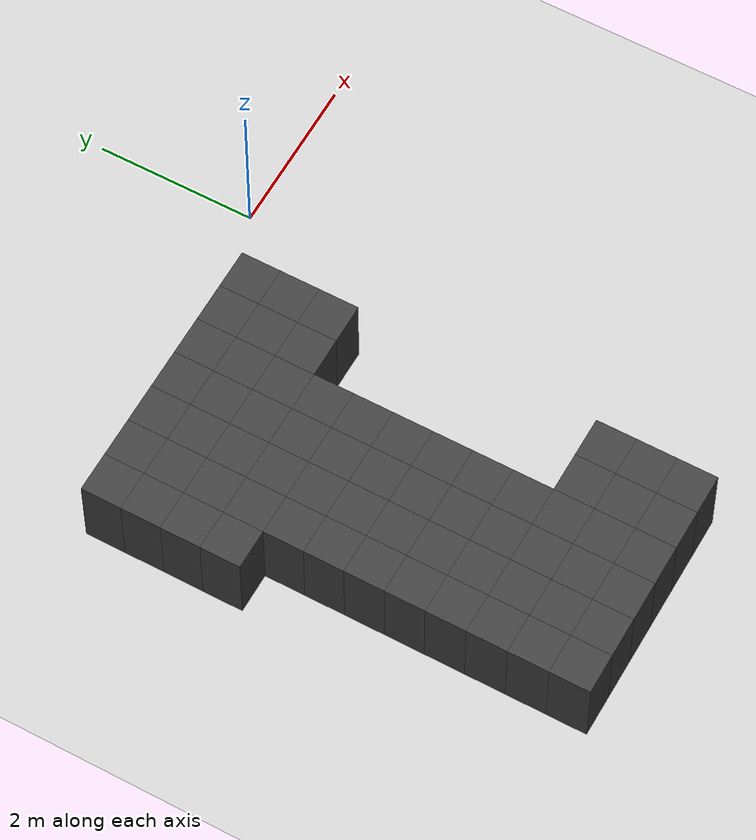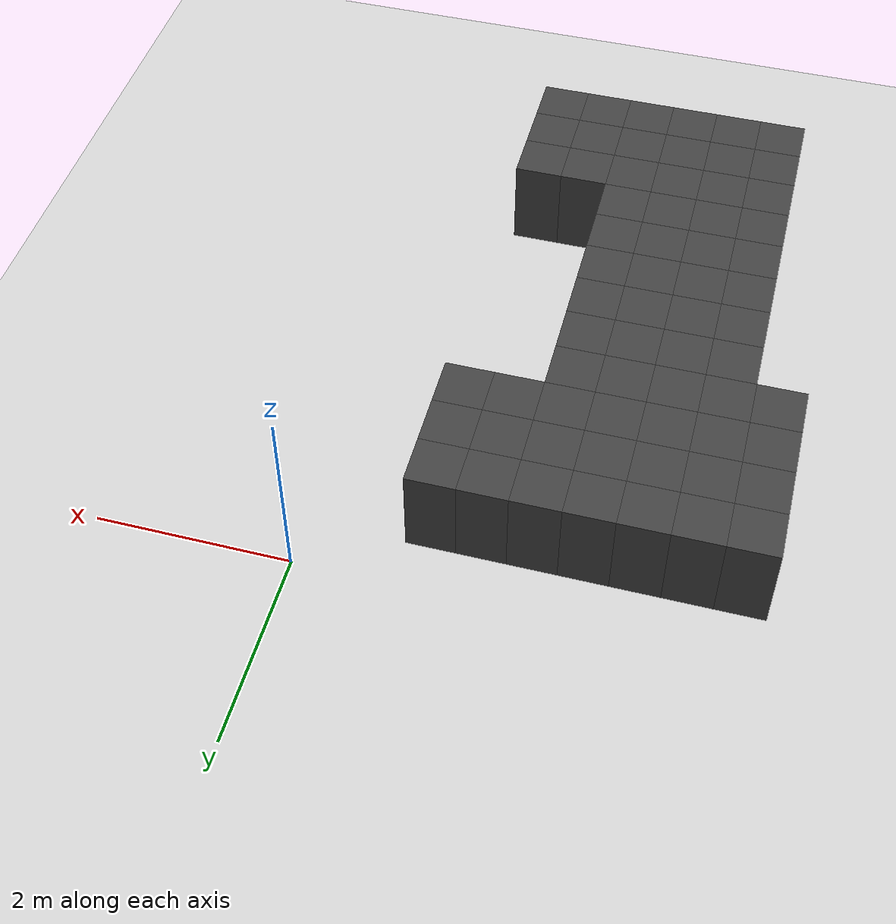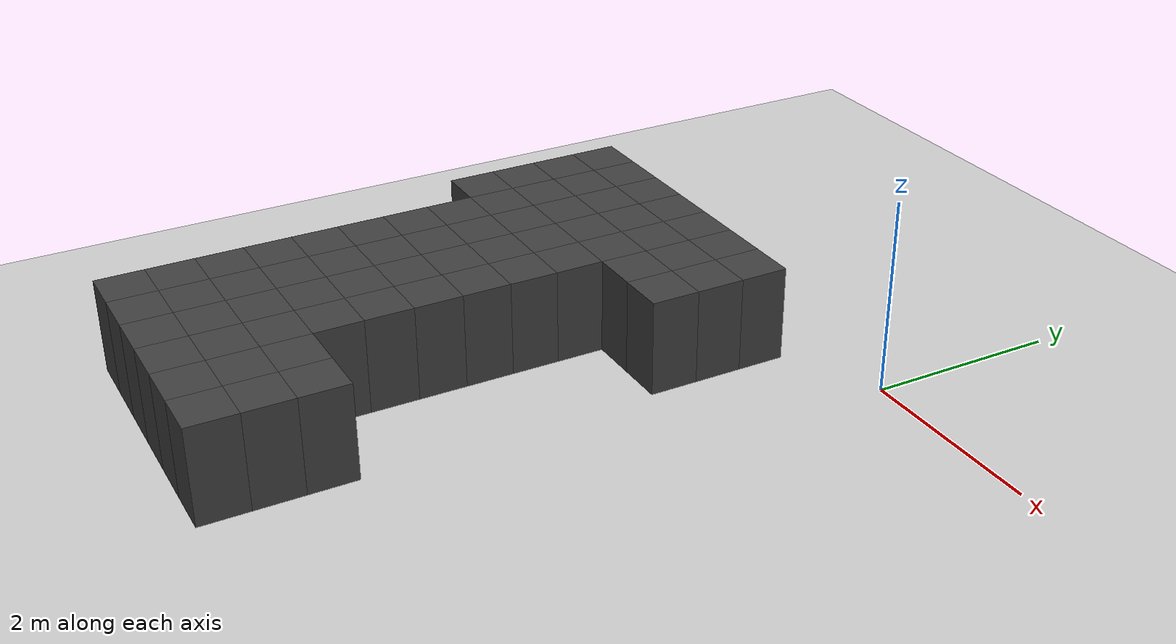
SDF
<sdf version="1.7">
 <world name="map_11515">
  <model name="ground_plane">
   <static>true</static>
   <link name="link">
    <collision name="collision">
     <geometry><plane><normal>0 0 1</normal><size>200 200</size></plane></geometry>
    </collision>
    <visual name="visual">
     <geometry><plane><normal>0 0 1</normal><size>200 200</size></plane></geometry>
     <material><ambient>0.8 0.8 0.8 1</ambient><diffuse>0.8 0.8 0.8 1</diffuse></material>
    </visual>
   </link>
  </model>
  <model name="maze_environment">
   <static>true</static>
   <link name="wall_1096">
    <pose>-4.250 -0.750 0.500 0 0 0</pose>
    <collision name="col"><geometry><box><size>0.5 0.5 1.0</size></box></geometry></collision>
    <visual name="vis">
     <geometry><box><size>0.5 0.5 1.0</size></box></geometry>
     <material><ambient>0.15 0.15 0.15 1</ambient><diffuse>0.25 0.25 0.25 1</diffuse></material>
    </visual>
   </link>
   <link name="wall_1097">
    <pose>-3.750 -0.750 0.500 0 0 0</pose>
    <collision name="col"><geometry><box><size>0.5 0.5 1.0</size></box></geometry></collision>
    <visual name="vis">
     <geometry><box><size>0.5 0.5 1.0</size></box></geometry>
     <material><ambient>0.15 0.15 0.15 1</ambient><diffuse>0.25 0.25 0.25 1</diffuse></material>
    </visual>
   </link>
   <link name="wall_1098">
    <pose>-3.250 -0.750 0.500 0 0 0</pose>
    <collision name="col"><geometry><box><size>0.5 0.5 1.0</size></box></geometry></collision>
    <visual name="vis">
     <geometry><box><size>0.5 0.5 1.0</size></box></geometry>
     <material><ambient>0.15 0.15 0.15 1</ambient><diffuse>0.25 0.25 0.25 1</diffuse></material>
    </visual>
   </link>
   <link name="wall_1099">
    <pose>-2.750 -0.750 0.500 0 0 0</pose>
    <collision name="col"><geometry><box><size>0.5 0.5 1.0</size></box></geometry></collision>
    <visual name="vis">
     <geometry><box><size>0.5 0.5 1.0</size></box></geometry>
     <material><ambient>0.15 0.15 0.15 1</ambient><diffuse>0.25 0.25 0.25 1</diffuse></material>
    </visual>
   </link>
   <link name="wall_1100">
    <pose>-2.250 -0.750 0.500 0 0 0</pose>
    <collision name="col"><geometry><box><size>0.5 0.5 1.0</size></box></geometry></collision>
    <visual name="vis">
     <geometry><box><size>0.5 0.5 1.0</size></box></geometry>
     <material><ambient>0.15 0.15 0.15 1</ambient><diffuse>0.25 0.25 0.25 1</diffuse></material>
    </visual>
   </link>
   <link name="wall_1101">
    <pose>-1.750 -0.750 0.500 0 0 0</pose>
    <collision name="col"><geometry><box><size>0.5 0.5 1.0</size></box></geometry></collision>
    <visual name="vis">
     <geometry><box><size>0.5 0.5 1.0</size></box></geometry>
     <material><ambient>0.15 0.15 0.15 1</ambient><diffuse>0.25 0.25 0.25 1</diffuse></material>
    </visual>
   </link>
   <link name="wall_1102">
    <pose>-1.250 -0.750 0.500 0 0 0</pose>
    <collision name="col"><geometry><box><size>0.5 0.5 1.0</size></box></geometry></collision>
    <visual name="vis">
     <geometry><box><size>0.5 0.5 1.0</size></box></geometry>
     <material><ambient>0.15 0.15 0.15 1</ambient><diffuse>0.25 0.25 0.25 1</diffuse></material>
    </visual>
   </link>
   <link name="wall_1145">
    <pose>-4.250 -1.250 0.500 0 0 0</pose>
    <collision name="col"><geometry><box><size>0.5 0.5 1.0</size></box></geometry></collision>
    <visual name="vis">
     <geometry><box><size>0.5 0.5 1.0</size></box></geometry>
     <material><ambient>0.15 0.15 0.15 1</ambient><diffuse>0.25 0.25 0.25 1</diffuse></material>
    </visual>
   </link>
   <link name="wall_1146">
    <pose>-3.750 -1.250 0.500 0 0 0</pose>
    <collision name="col"><geometry><box><size>0.5 0.5 1.0</size></box></geometry></collision>
    <visual name="vis">
     <geometry><box><size>0.5 0.5 1.0</size></box></geometry>
     <material><ambient>0.15 0.15 0.15 1</ambient><diffuse>0.25 0.25 0.25 1</diffuse></material>
    </visual>
   </link>
   <link name="wall_1147">
    <pose>-3.250 -1.250 0.500 0 0 0</pose>
    <collision name="col"><geometry><box><size>0.5 0.5 1.0</size></box></geometry></collision>
    <visual name="vis">
     <geometry><box><size>0.5 0.5 1.0</size></box></geometry>
     <material><ambient>0.15 0.15 0.15 1</ambient><diffuse>0.25 0.25 0.25 1</diffuse></material>
    </visual>
   </link>
   <link name="wall_1148">
    <pose>-2.750 -1.250 0.500 0 0 0</pose>
    <collision name="col"><geometry><box><size>0.5 0.5 1.0</size></box></geometry></collision>
    <visual name="vis">
     <geometry><box><size>0.5 0.5 1.0</size></box></geometry>
     <material><ambient>0.15 0.15 0.15 1</ambient><diffuse>0.25 0.25 0.25 1</diffuse></material>
    </visual>
   </link>
   <link name="wall_1149">
    <pose>-2.250 -1.250 0.500 0 0 0</pose>
    <collision name="col"><geometry><box><size>0.5 0.5 1.0</size></box></geometry></collision>
    <visual name="vis">
     <geometry><box><size>0.5 0.5 1.0</size></box></geometry>
     <material><ambient>0.15 0.15 0.15 1</ambient><diffuse>0.25 0.25 0.25 1</diffuse></material>
    </visual>
   </link>
   <link name="wall_1150">
    <pose>-1.750 -1.250 0.500 0 0 0</pose>
    <collision name="col"><geometry><box><size>0.5 0.5 1.0</size></box></geometry></collision>
    <visual name="vis">
     <geometry><box><size>0.5 0.5 1.0</size></box></geometry>
     <material><ambient>0.15 0.15 0.15 1</ambient><diffuse>0.25 0.25 0.25 1</diffuse></material>
    </visual>
   </link>
   <link name="wall_1151">
    <pose>-1.250 -1.250 0.500 0 0 0</pose>
    <collision name="col"><geometry><box><size>0.5 0.5 1.0</size></box></geometry></collision>
    <visual name="vis">
     <geometry><box><size>0.5 0.5 1.0</size></box></geometry>
     <material><ambient>0.15 0.15 0.15 1</ambient><diffuse>0.25 0.25 0.25 1</diffuse></material>
    </visual>
   </link>
   <link name="wall_1194">
    <pose>-4.250 -1.750 0.500 0 0 0</pose>
    <collision name="col"><geometry><box><size>0.5 0.5 1.0</size></box></geometry></collision>
    <visual name="vis">
     <geometry><box><size>0.5 0.5 1.0</size></box></geometry>
     <material><ambient>0.15 0.15 0.15 1</ambient><diffuse>0.25 0.25 0.25 1</diffuse></material>
    </visual>
   </link>
   <link name="wall_1195">
    <pose>-3.750 -1.750 0.500 0 0 0</pose>
    <collision name="col"><geometry><box><size>0.5 0.5 1.0</size></box></geometry></collision>
    <visual name="vis">
     <geometry><box><size>0.5 0.5 1.0</size></box></geometry>
     <material><ambient>0.15 0.15 0.15 1</ambient><diffuse>0.25 0.25 0.25 1</diffuse></material>
    </visual>
   </link>
   <link name="wall_1196">
    <pose>-3.250 -1.750 0.500 0 0 0</pose>
    <collision name="col"><geometry><box><size>0.5 0.5 1.0</size></box></geometry></collision>
    <visual name="vis">
     <geometry><box><size>0.5 0.5 1.0</size></box></geometry>
     <material><ambient>0.15 0.15 0.15 1</ambient><diffuse>0.25 0.25 0.25 1</diffuse></material>
    </visual>
   </link>
   <link name="wall_1197">
    <pose>-2.750 -1.750 0.500 0 0 0</pose>
    <collision name="col"><geometry><box><size>0.5 0.5 1.0</size></box></geometry></collision>
    <visual name="vis">
     <geometry><box><size>0.5 0.5 1.0</size></box></geometry>
     <material><ambient>0.15 0.15 0.15 1</ambient><diffuse>0.25 0.25 0.25 1</diffuse></material>
    </visual>
   </link>
   <link name="wall_1198">
    <pose>-2.250 -1.750 0.500 0 0 0</pose>
    <collision name="col"><geometry><box><size>0.5 0.5 1.0</size></box></geometry></collision>
    <visual name="vis">
     <geometry><box><size>0.5 0.5 1.0</size></box></geometry>
     <material><ambient>0.15 0.15 0.15 1</ambient><diffuse>0.25 0.25 0.25 1</diffuse></material>
    </visual>
   </link>
   <link name="wall_1199">
    <pose>-1.750 -1.750 0.500 0 0 0</pose>
    <collision name="col"><geometry><box><size>0.5 0.5 1.0</size></box></geometry></collision>
    <visual name="vis">
     <geometry><box><size>0.5 0.5 1.0</size></box></geometry>
     <material><ambient>0.15 0.15 0.15 1</ambient><diffuse>0.25 0.25 0.25 1</diffuse></material>
    </visual>
   </link>
   <link name="wall_1200">
    <pose>-1.250 -1.750 0.500 0 0 0</pose>
    <collision name="col"><geometry><box><size>0.5 0.5 1.0</size></box></geometry></collision>
    <visual name="vis">
     <geometry><box><size>0.5 0.5 1.0</size></box></geometry>
     <material><ambient>0.15 0.15 0.15 1</ambient><diffuse>0.25 0.25 0.25 1</diffuse></material>
    </visual>
   </link>
   <link name="wall_1243">
    <pose>-4.250 -2.250 0.500 0 0 0</pose>
    <collision name="col"><geometry><box><size>0.5 0.5 1.0</size></box></geometry></collision>
    <visual name="vis">
     <geometry><box><size>0.5 0.5 1.0</size></box></geometry>
     <material><ambient>0.15 0.15 0.15 1</ambient><diffuse>0.25 0.25 0.25 1</diffuse></material>
    </visual>
   </link>
   <link name="wall_1244">
    <pose>-3.750 -2.250 0.500 0 0 0</pose>
    <collision name="col"><geometry><box><size>0.5 0.5 1.0</size></box></geometry></collision>
    <visual name="vis">
     <geometry><box><size>0.5 0.5 1.0</size></box></geometry>
     <material><ambient>0.15 0.15 0.15 1</ambient><diffuse>0.25 0.25 0.25 1</diffuse></material>
    </visual>
   </link>
   <link name="wall_1245">
    <pose>-3.250 -2.250 0.500 0 0 0</pose>
    <collision name="col"><geometry><box><size>0.5 0.5 1.0</size></box></geometry></collision>
    <visual name="vis">
     <geometry><box><size>0.5 0.5 1.0</size></box></geometry>
     <material><ambient>0.15 0.15 0.15 1</ambient><diffuse>0.25 0.25 0.25 1</diffuse></material>
    </visual>
   </link>
   <link name="wall_1246">
    <pose>-2.750 -2.250 0.500 0 0 0</pose>
    <collision name="col"><geometry><box><size>0.5 0.5 1.0</size></box></geometry></collision>
    <visual name="vis">
     <geometry><box><size>0.5 0.5 1.0</size></box></geometry>
     <material><ambient>0.15 0.15 0.15 1</ambient><diffuse>0.25 0.25 0.25 1</diffuse></material>
    </visual>
   </link>
   <link name="wall_1247">
    <pose>-2.250 -2.250 0.500 0 0 0</pose>
    <collision name="col"><geometry><box><size>0.5 0.5 1.0</size></box></geometry></collision>
    <visual name="vis">
     <geometry><box><size>0.5 0.5 1.0</size></box></geometry>
     <material><ambient>0.15 0.15 0.15 1</ambient><diffuse>0.25 0.25 0.25 1</diffuse></material>
    </visual>
   </link>
   <link name="wall_1290">
    <pose>-3.750 -2.750 0.500 0 0 0</pose>
    <collision name="col"><geometry><box><size>0.5 0.5 1.0</size></box></geometry></collision>
    <visual name="vis">
     <geometry><box><size>0.5 0.5 1.0</size></box></geometry>
     <material><ambient>0.15 0.15 0.15 1</ambient><diffuse>0.25 0.25 0.25 1</diffuse></material>
    </visual>
   </link>
   <link name="wall_1291">
    <pose>-3.250 -2.750 0.500 0 0 0</pose>
    <collision name="col"><geometry><box><size>0.5 0.5 1.0</size></box></geometry></collision>
    <visual name="vis">
     <geometry><box><size>0.5 0.5 1.0</size></box></geometry>
     <material><ambient>0.15 0.15 0.15 1</ambient><diffuse>0.25 0.25 0.25 1</diffuse></material>
    </visual>
   </link>
   <link name="wall_1292">
    <pose>-2.750 -2.750 0.500 0 0 0</pose>
    <collision name="col"><geometry><box><size>0.5 0.5 1.0</size></box></geometry></collision>
    <visual name="vis">
     <geometry><box><size>0.5 0.5 1.0</size></box></geometry>
     <material><ambient>0.15 0.15 0.15 1</ambient><diffuse>0.25 0.25 0.25 1</diffuse></material>
    </visual>
   </link>
   <link name="wall_1293">
    <pose>-2.250 -2.750 0.500 0 0 0</pose>
    <collision name="col"><geometry><box><size>0.5 0.5 1.0</size></box></geometry></collision>
    <visual name="vis">
     <geometry><box><size>0.5 0.5 1.0</size></box></geometry>
     <material><ambient>0.15 0.15 0.15 1</ambient><diffuse>0.25 0.25 0.25 1</diffuse></material>
    </visual>
   </link>
   <link name="wall_1336">
    <pose>-3.750 -3.250 0.500 0 0 0</pose>
    <collision name="col"><geometry><box><size>0.5 0.5 1.0</size></box></geometry></collision>
    <visual name="vis">
     <geometry><box><size>0.5 0.5 1.0</size></box></geometry>
     <material><ambient>0.15 0.15 0.15 1</ambient><diffuse>0.25 0.25 0.25 1</diffuse></material>
    </visual>
   </link>
   <link name="wall_1337">
    <pose>-3.250 -3.250 0.500 0 0 0</pose>
    <collision name="col"><geometry><box><size>0.5 0.5 1.0</size></box></geometry></collision>
    <visual name="vis">
     <geometry><box><size>0.5 0.5 1.0</size></box></geometry>
     <material><ambient>0.15 0.15 0.15 1</ambient><diffuse>0.25 0.25 0.25 1</diffuse></material>
    </visual>
   </link>
   <link name="wall_1338">
    <pose>-2.750 -3.250 0.500 0 0 0</pose>
    <collision name="col"><geometry><box><size>0.5 0.5 1.0</size></box></geometry></collision>
    <visual name="vis">
     <geometry><box><size>0.5 0.5 1.0</size></box></geometry>
     <material><ambient>0.15 0.15 0.15 1</ambient><diffuse>0.25 0.25 0.25 1</diffuse></material>
    </visual>
   </link>
   <link name="wall_1339">
    <pose>-2.250 -3.250 0.500 0 0 0</pose>
    <collision name="col"><geometry><box><size>0.5 0.5 1.0</size></box></geometry></collision>
    <visual name="vis">
     <geometry><box><size>0.5 0.5 1.0</size></box></geometry>
     <material><ambient>0.15 0.15 0.15 1</ambient><diffuse>0.25 0.25 0.25 1</diffuse></material>
    </visual>
   </link>
   <link name="wall_1382">
    <pose>-3.750 -3.750 0.500 0 0 0</pose>
    <collision name="col"><geometry><box><size>0.5 0.5 1.0</size></box></geometry></collision>
    <visual name="vis">
     <geometry><box><size>0.5 0.5 1.0</size></box></geometry>
     <material><ambient>0.15 0.15 0.15 1</ambient><diffuse>0.25 0.25 0.25 1</diffuse></material>
    </visual>
   </link>
   <link name="wall_1383">
    <pose>-3.250 -3.750 0.500 0 0 0</pose>
    <collision name="col"><geometry><box><size>0.5 0.5 1.0</size></box></geometry></collision>
    <visual name="vis">
     <geometry><box><size>0.5 0.5 1.0</size></box></geometry>
     <material><ambient>0.15 0.15 0.15 1</ambient><diffuse>0.25 0.25 0.25 1</diffuse></material>
    </visual>
   </link>
   <link name="wall_1384">
    <pose>-2.750 -3.750 0.500 0 0 0</pose>
    <collision name="col"><geometry><box><size>0.5 0.5 1.0</size></box></geometry></collision>
    <visual name="vis">
     <geometry><box><size>0.5 0.5 1.0</size></box></geometry>
     <material><ambient>0.15 0.15 0.15 1</ambient><diffuse>0.25 0.25 0.25 1</diffuse></material>
    </visual>
   </link>
   <link name="wall_1385">
    <pose>-2.250 -3.750 0.500 0 0 0</pose>
    <collision name="col"><geometry><box><size>0.5 0.5 1.0</size></box></geometry></collision>
    <visual name="vis">
     <geometry><box><size>0.5 0.5 1.0</size></box></geometry>
     <material><ambient>0.15 0.15 0.15 1</ambient><diffuse>0.25 0.25 0.25 1</diffuse></material>
    </visual>
   </link>
   <link name="wall_1428">
    <pose>-3.750 -4.250 0.500 0 0 0</pose>
    <collision name="col"><geometry><box><size>0.5 0.5 1.0</size></box></geometry></collision>
    <visual name="vis">
     <geometry><box><size>0.5 0.5 1.0</size></box></geometry>
     <material><ambient>0.15 0.15 0.15 1</ambient><diffuse>0.25 0.25 0.25 1</diffuse></material>
    </visual>
   </link>
   <link name="wall_1429">
    <pose>-3.250 -4.250 0.500 0 0 0</pose>
    <collision name="col"><geometry><box><size>0.5 0.5 1.0</size></box></geometry></collision>
    <visual name="vis">
     <geometry><box><size>0.5 0.5 1.0</size></box></geometry>
     <material><ambient>0.15 0.15 0.15 1</ambient><diffuse>0.25 0.25 0.25 1</diffuse></material>
    </visual>
   </link>
   <link name="wall_1430">
    <pose>-2.750 -4.250 0.500 0 0 0</pose>
    <collision name="col"><geometry><box><size>0.5 0.5 1.0</size></box></geometry></collision>
    <visual name="vis">
     <geometry><box><size>0.5 0.5 1.0</size></box></geometry>
     <material><ambient>0.15 0.15 0.15 1</ambient><diffuse>0.25 0.25 0.25 1</diffuse></material>
    </visual>
   </link>
   <link name="wall_1431">
    <pose>-2.250 -4.250 0.500 0 0 0</pose>
    <collision name="col"><geometry><box><size>0.5 0.5 1.0</size></box></geometry></collision>
    <visual name="vis">
     <geometry><box><size>0.5 0.5 1.0</size></box></geometry>
     <material><ambient>0.15 0.15 0.15 1</ambient><diffuse>0.25 0.25 0.25 1</diffuse></material>
    </visual>
   </link>
   <link name="wall_1474">
    <pose>-3.750 -4.750 0.500 0 0 0</pose>
    <collision name="col"><geometry><box><size>0.5 0.5 1.0</size></box></geometry></collision>
    <visual name="vis">
     <geometry><box><size>0.5 0.5 1.0</size></box></geometry>
     <material><ambient>0.15 0.15 0.15 1</ambient><diffuse>0.25 0.25 0.25 1</diffuse></material>
    </visual>
   </link>
   <link name="wall_1475">
    <pose>-3.250 -4.750 0.500 0 0 0</pose>
    <collision name="col"><geometry><box><size>0.5 0.5 1.0</size></box></geometry></collision>
    <visual name="vis">
     <geometry><box><size>0.5 0.5 1.0</size></box></geometry>
     <material><ambient>0.15 0.15 0.15 1</ambient><diffuse>0.25 0.25 0.25 1</diffuse></material>
    </visual>
   </link>
   <link name="wall_1476">
    <pose>-2.750 -4.750 0.500 0 0 0</pose>
    <collision name="col"><geometry><box><size>0.5 0.5 1.0</size></box></geometry></collision>
    <visual name="vis">
     <geometry><box><size>0.5 0.5 1.0</size></box></geometry>
     <material><ambient>0.15 0.15 0.15 1</ambient><diffuse>0.25 0.25 0.25 1</diffuse></material>
    </visual>
   </link>
   <link name="wall_1477">
    <pose>-2.250 -4.750 0.500 0 0 0</pose>
    <collision name="col"><geometry><box><size>0.5 0.5 1.0</size></box></geometry></collision>
    <visual name="vis">
     <geometry><box><size>0.5 0.5 1.0</size></box></geometry>
     <material><ambient>0.15 0.15 0.15 1</ambient><diffuse>0.25 0.25 0.25 1</diffuse></material>
    </visual>
   </link>
   <link name="wall_1520">
    <pose>-3.750 -5.250 0.500 0 0 0</pose>
    <collision name="col"><geometry><box><size>0.5 0.5 1.0</size></box></geometry></collision>
    <visual name="vis">
     <geometry><box><size>0.5 0.5 1.0</size></box></geometry>
     <material><ambient>0.15 0.15 0.15 1</ambient><diffuse>0.25 0.25 0.25 1</diffuse></material>
    </visual>
   </link>
   <link name="wall_1521">
    <pose>-3.250 -5.250 0.500 0 0 0</pose>
    <collision name="col"><geometry><box><size>0.5 0.5 1.0</size></box></geometry></collision>
    <visual name="vis">
     <geometry><box><size>0.5 0.5 1.0</size></box></geometry>
     <material><ambient>0.15 0.15 0.15 1</ambient><diffuse>0.25 0.25 0.25 1</diffuse></material>
    </visual>
   </link>
   <link name="wall_1522">
    <pose>-2.750 -5.250 0.500 0 0 0</pose>
    <collision name="col"><geometry><box><size>0.5 0.5 1.0</size></box></geometry></collision>
    <visual name="vis">
     <geometry><box><size>0.5 0.5 1.0</size></box></geometry>
     <material><ambient>0.15 0.15 0.15 1</ambient><diffuse>0.25 0.25 0.25 1</diffuse></material>
    </visual>
   </link>
   <link name="wall_1523">
    <pose>-2.250 -5.250 0.500 0 0 0</pose>
    <collision name="col"><geometry><box><size>0.5 0.5 1.0</size></box></geometry></collision>
    <visual name="vis">
     <geometry><box><size>0.5 0.5 1.0</size></box></geometry>
     <material><ambient>0.15 0.15 0.15 1</ambient><diffuse>0.25 0.25 0.25 1</diffuse></material>
    </visual>
   </link>
   <link name="wall_1524">
    <pose>-1.750 -5.250 0.500 0 0 0</pose>
    <collision name="col"><geometry><box><size>0.5 0.5 1.0</size></box></geometry></collision>
    <visual name="vis">
     <geometry><box><size>0.5 0.5 1.0</size></box></geometry>
     <material><ambient>0.15 0.15 0.15 1</ambient><diffuse>0.25 0.25 0.25 1</diffuse></material>
    </visual>
   </link>
   <link name="wall_1525">
    <pose>-1.250 -5.250 0.500 0 0 0</pose>
    <collision name="col"><geometry><box><size>0.5 0.5 1.0</size></box></geometry></collision>
    <visual name="vis">
     <geometry><box><size>0.5 0.5 1.0</size></box></geometry>
     <material><ambient>0.15 0.15 0.15 1</ambient><diffuse>0.25 0.25 0.25 1</diffuse></material>
    </visual>
   </link>
   <link name="wall_1569">
    <pose>-3.750 -5.750 0.500 0 0 0</pose>
    <collision name="col"><geometry><box><size>0.5 0.5 1.0</size></box></geometry></collision>
    <visual name="vis">
     <geometry><box><size>0.5 0.5 1.0</size></box></geometry>
     <material><ambient>0.15 0.15 0.15 1</ambient><diffuse>0.25 0.25 0.25 1</diffuse></material>
    </visual>
   </link>
   <link name="wall_1570">
    <pose>-3.250 -5.750 0.500 0 0 0</pose>
    <collision name="col"><geometry><box><size>0.5 0.5 1.0</size></box></geometry></collision>
    <visual name="vis">
     <geometry><box><size>0.5 0.5 1.0</size></box></geometry>
     <material><ambient>0.15 0.15 0.15 1</ambient><diffuse>0.25 0.25 0.25 1</diffuse></material>
    </visual>
   </link>
   <link name="wall_1571">
    <pose>-2.750 -5.750 0.500 0 0 0</pose>
    <collision name="col"><geometry><box><size>0.5 0.5 1.0</size></box></geometry></collision>
    <visual name="vis">
     <geometry><box><size>0.5 0.5 1.0</size></box></geometry>
     <material><ambient>0.15 0.15 0.15 1</ambient><diffuse>0.25 0.25 0.25 1</diffuse></material>
    </visual>
   </link>
   <link name="wall_1572">
    <pose>-2.250 -5.750 0.500 0 0 0</pose>
    <collision name="col"><geometry><box><size>0.5 0.5 1.0</size></box></geometry></collision>
    <visual name="vis">
     <geometry><box><size>0.5 0.5 1.0</size></box></geometry>
     <material><ambient>0.15 0.15 0.15 1</ambient><diffuse>0.25 0.25 0.25 1</diffuse></material>
    </visual>
   </link>
   <link name="wall_1573">
    <pose>-1.750 -5.750 0.500 0 0 0</pose>
    <collision name="col"><geometry><box><size>0.5 0.5 1.0</size></box></geometry></collision>
    <visual name="vis">
     <geometry><box><size>0.5 0.5 1.0</size></box></geometry>
     <material><ambient>0.15 0.15 0.15 1</ambient><diffuse>0.25 0.25 0.25 1</diffuse></material>
    </visual>
   </link>
   <link name="wall_1574">
    <pose>-1.250 -5.750 0.500 0 0 0</pose>
    <collision name="col"><geometry><box><size>0.5 0.5 1.0</size></box></geometry></collision>
    <visual name="vis">
     <geometry><box><size>0.5 0.5 1.0</size></box></geometry>
     <material><ambient>0.15 0.15 0.15 1</ambient><diffuse>0.25 0.25 0.25 1</diffuse></material>
    </visual>
   </link>
   <link name="wall_1618">
    <pose>-3.750 -6.250 0.500 0 0 0</pose>
    <collision name="col"><geometry><box><size>0.5 0.5 1.0</size></box></geometry></collision>
    <visual name="vis">
     <geometry><box><size>0.5 0.5 1.0</size></box></geometry>
     <material><ambient>0.15 0.15 0.15 1</ambient><diffuse>0.25 0.25 0.25 1</diffuse></material>
    </visual>
   </link>
   <link name="wall_1619">
    <pose>-3.250 -6.250 0.500 0 0 0</pose>
    <collision name="col"><geometry><box><size>0.5 0.5 1.0</size></box></geometry></collision>
    <visual name="vis">
     <geometry><box><size>0.5 0.5 1.0</size></box></geometry>
     <material><ambient>0.15 0.15 0.15 1</ambient><diffuse>0.25 0.25 0.25 1</diffuse></material>
    </visual>
   </link>
   <link name="wall_1620">
    <pose>-2.750 -6.250 0.500 0 0 0</pose>
    <collision name="col"><geometry><box><size>0.5 0.5 1.0</size></box></geometry></collision>
    <visual name="vis">
     <geometry><box><size>0.5 0.5 1.0</size></box></geometry>
     <material><ambient>0.15 0.15 0.15 1</ambient><diffuse>0.25 0.25 0.25 1</diffuse></material>
    </visual>
   </link>
   <link name="wall_1621">
    <pose>-2.250 -6.250 0.500 0 0 0</pose>
    <collision name="col"><geometry><box><size>0.5 0.5 1.0</size></box></geometry></collision>
    <visual name="vis">
     <geometry><box><size>0.5 0.5 1.0</size></box></geometry>
     <material><ambient>0.15 0.15 0.15 1</ambient><diffuse>0.25 0.25 0.25 1</diffuse></material>
    </visual>
   </link>
   <link name="wall_1622">
    <pose>-1.750 -6.250 0.500 0 0 0</pose>
    <collision name="col"><geometry><box><size>0.5 0.5 1.0</size></box></geometry></collision>
    <visual name="vis">
     <geometry><box><size>0.5 0.5 1.0</size></box></geometry>
     <material><ambient>0.15 0.15 0.15 1</ambient><diffuse>0.25 0.25 0.25 1</diffuse></material>
    </visual>
   </link>
   <link name="wall_1623">
    <pose>-1.250 -6.250 0.500 0 0 0</pose>
    <collision name="col"><geometry><box><size>0.5 0.5 1.0</size></box></geometry></collision>
    <visual name="vis">
     <geometry><box><size>0.5 0.5 1.0</size></box></geometry>
     <material><ambient>0.15 0.15 0.15 1</ambient><diffuse>0.25 0.25 0.25 1</diffuse></material>
    </visual>
   </link>
  </model>
 </world>
</sdf>
